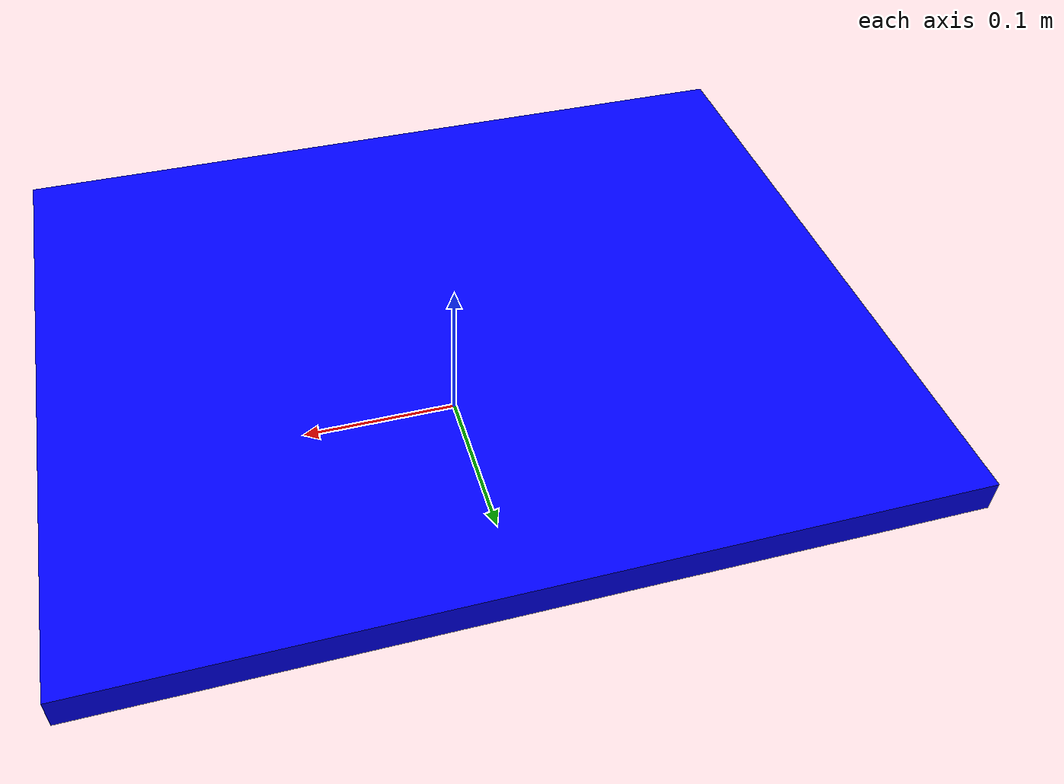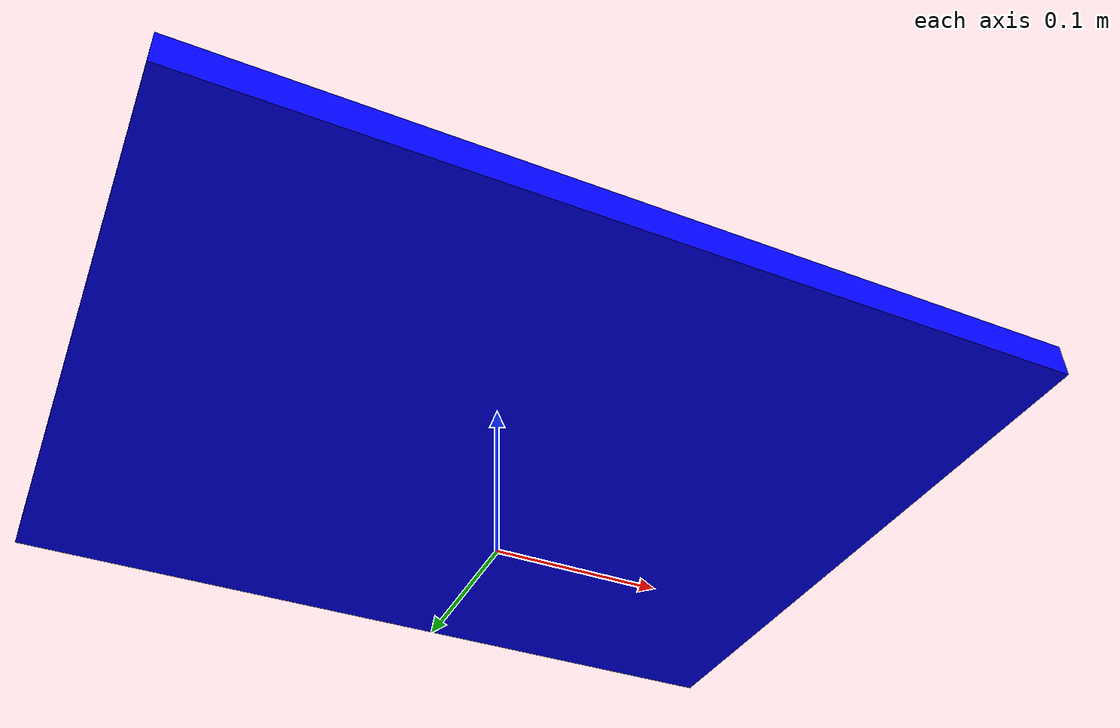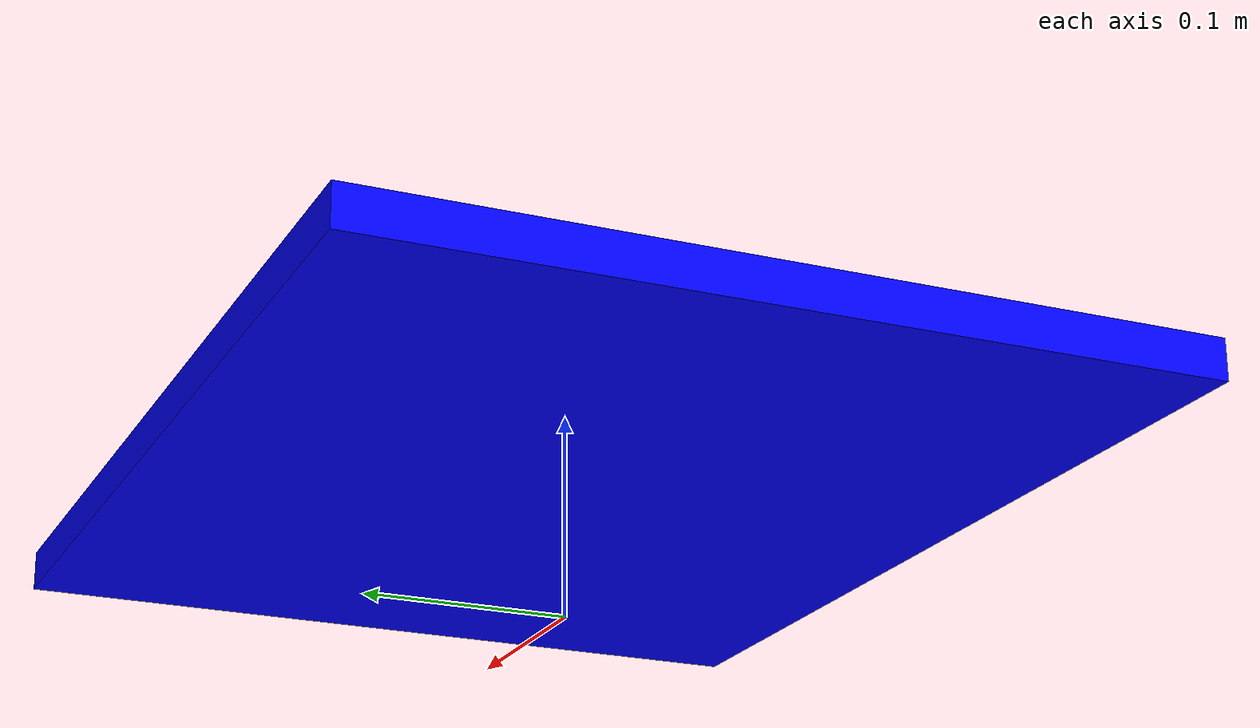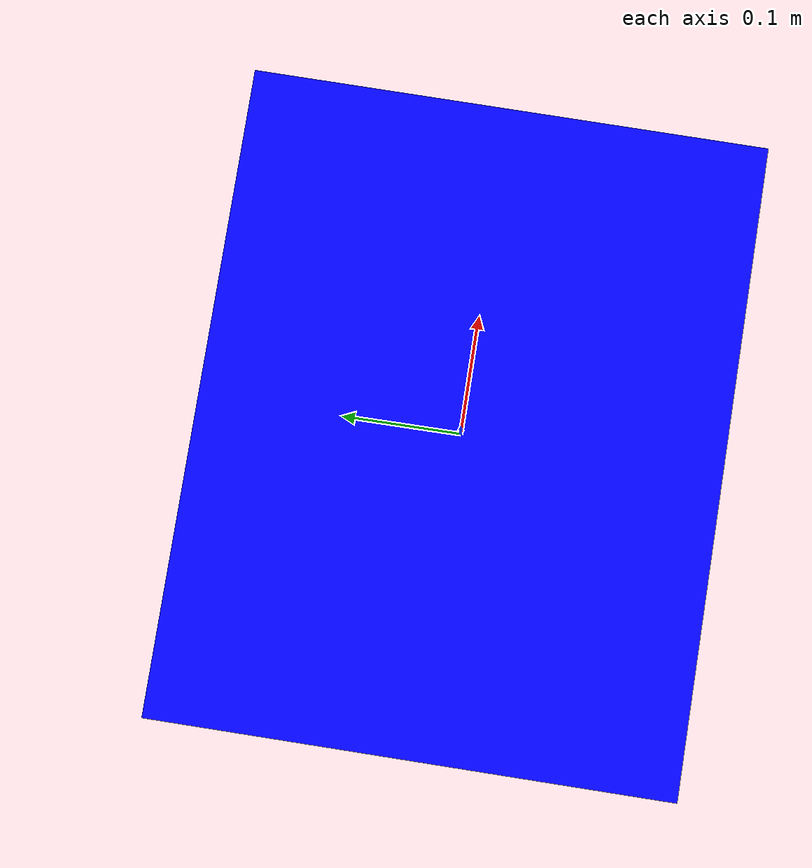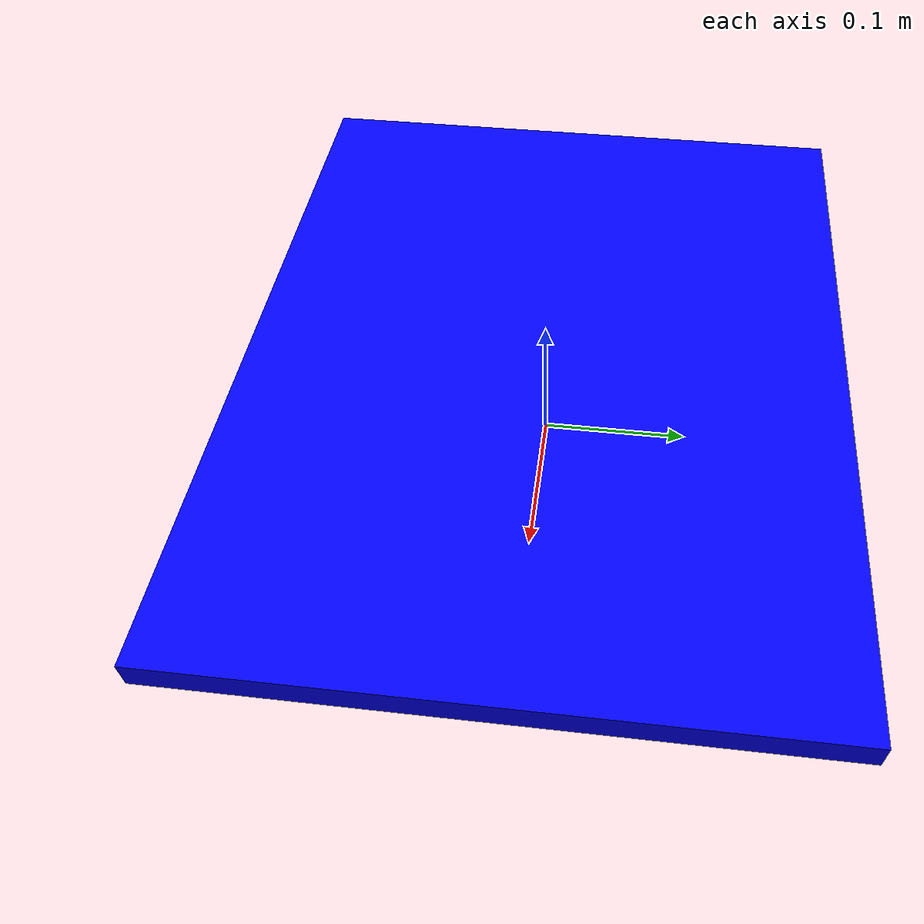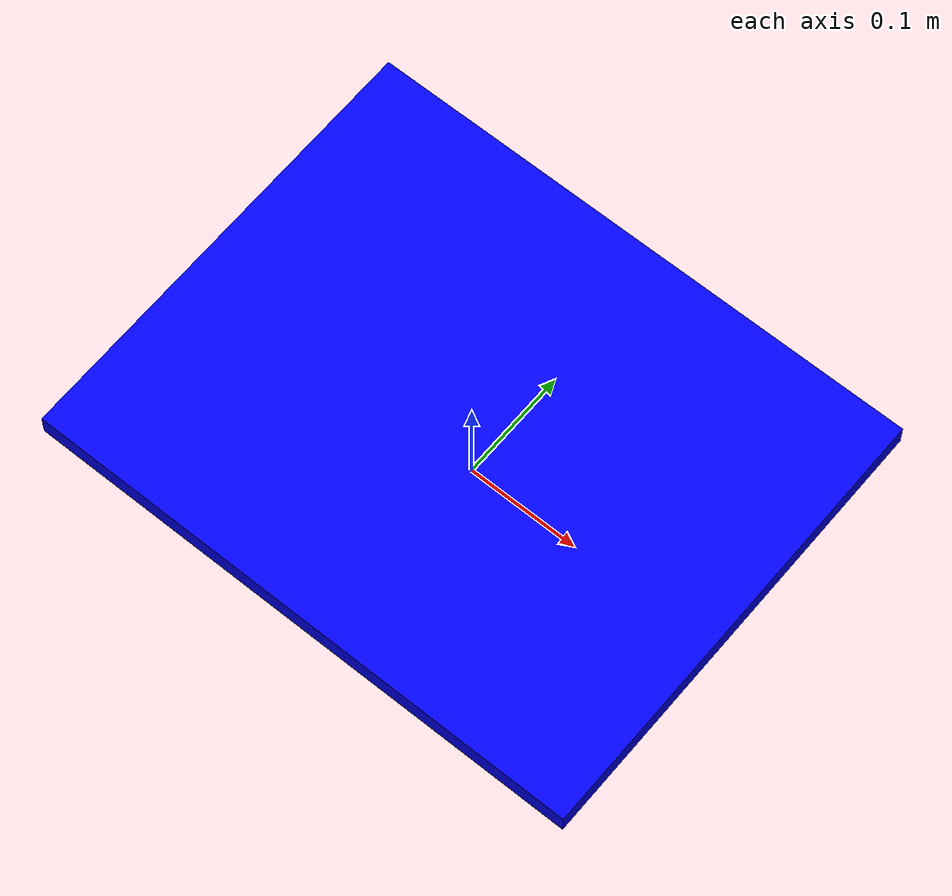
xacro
<?xml version="1.0"?>
<robot xmlns:xacro="http://www.ros.org/wiki/xacro">
  <!-- Variables -->
  <xacro:property name="base_length" value="0.498"/>
  <xacro:property name="base_width" value="0.4"/>
  <xacro:property name="base_height" value="0.02"/>
  <xacro:property name="top_length" value="0.246"/>
  <xacro:property name="top_width" value="0.361"/>
  <xacro:property name="top_height" value="0.03"/>
  <xacro:property name="clearance" value="0.05"/>

  <!-- Base Link -->
  <link name="base_link"/>

  <!-- Base Plate -->
  <joint name="base_joint" type="fixed">
    <origin xyz="0.0 0.0 ${clearance + base_height + 0.01}"/>  <!-- 1cm provided for no clipping -->
    <parent link="base_link"/>
    <child link="base_plate"/>
  </joint>

  <link name="base_plate">
    <inertial>
      <origin xyz="0.0 0.0 -${base_height/2}"/>
      <mass value="0.0"/>
      <inertia ixx="0.0" ixy="0.0" ixz="0.0" iyy="0.0" iyz="0.0" izz="0.0"/>
    </inertial>
    <visual>
      <origin xyz="0.0 0.0 -${base_height/2}"/>
      <geometry>
        <box size="${base_length} ${base_width} ${base_height}"/>
      </geometry>
      <material name="blue">
        <color rgba="0.0 0.0 1.0 1.0"/>
      </material>
    </visual>
    <collision>
      <origin xyz="0.0 0.0 -${base_height/2}"/>
      <geometry>
        <box size="${base_length} ${base_width} ${base_height}"/>
      </geometry>
    </collision>
    <xacro:inertial_box mass="1.0" x="${base_length}" y="${base_width}" z="${base_height}">
      <origin xyz="0.0 0.0 -${base_height/2}"/>
    </xacro:inertial_box>
  </link>

  <!-- Top Plate -->

</robot>
